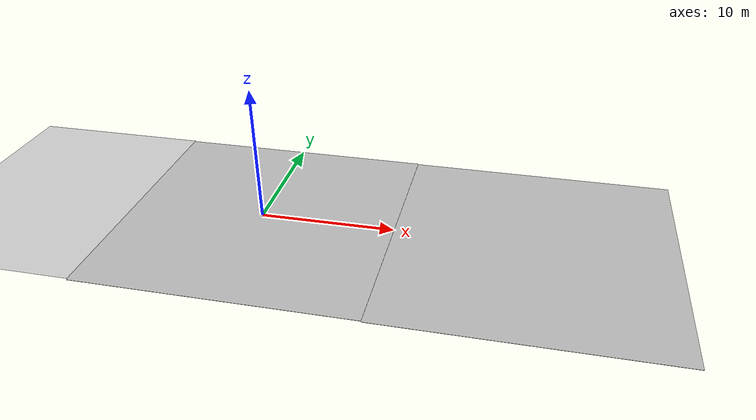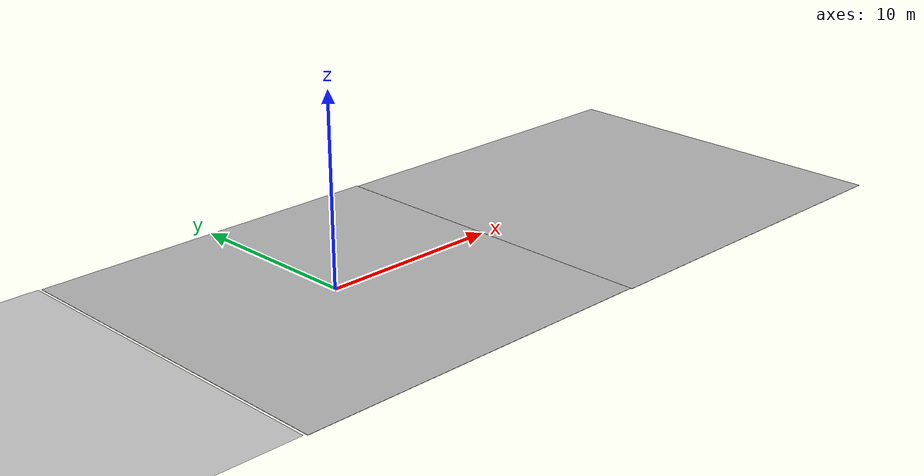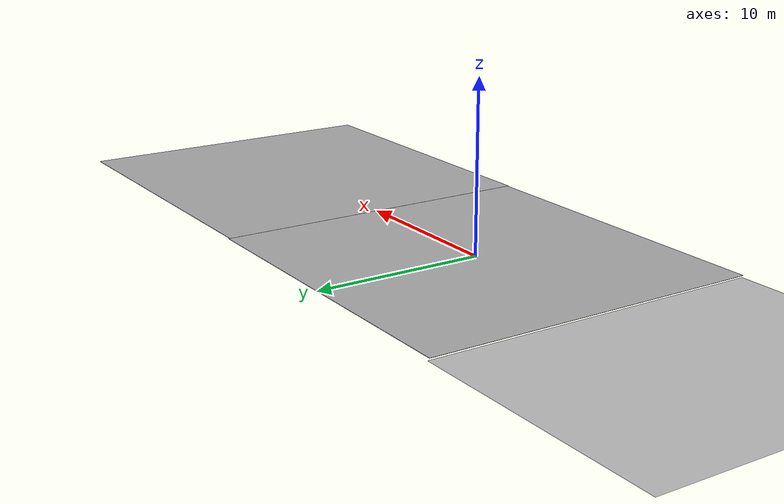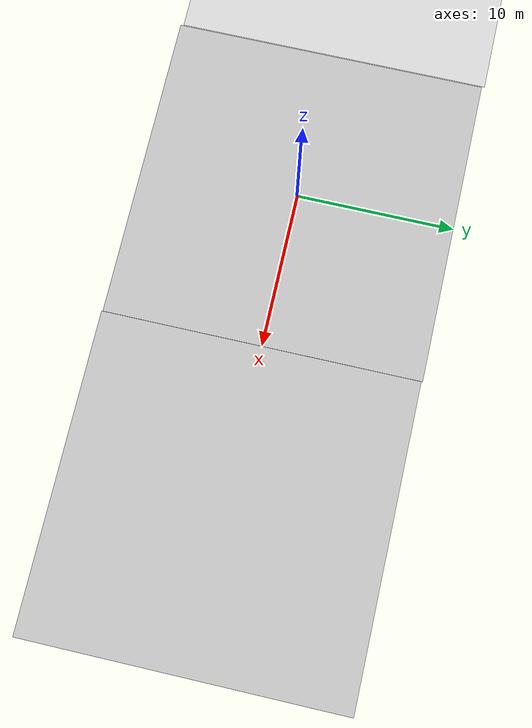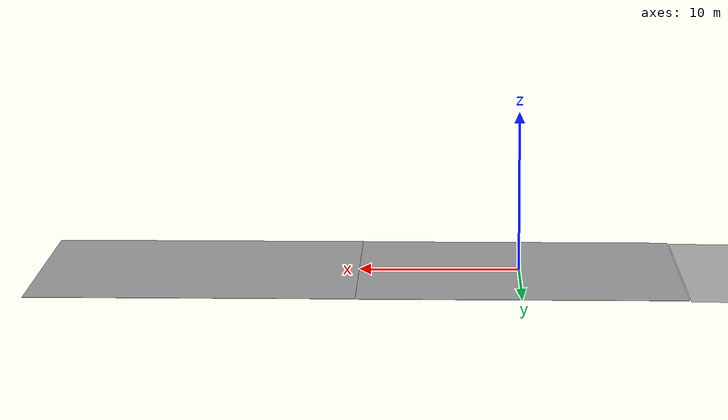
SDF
<?xml version='1.0'?>
<sdf version='1.6'>
  <model name='ground20x60'>
    <model name='my_ground_plane'>
      <static>1</static>
      <link name='link'>
        <collision name='collision'>
          <geometry>
            <plane>
              <normal>0 0 1</normal>
              <size>20 20</size>
            </plane>
          </geometry>
          <surface>
            <friction>
              <ode>
                <mu>100</mu>
                <mu2>50</mu2>
              </ode>
            </friction>
          </surface>
        </collision>
        <visual name='visual'>
          <cast_shadows>0</cast_shadows>
          <geometry>
            <plane>
              <normal>0 0 1</normal>
              <size>20 20</size>
            </plane>
          </geometry>
          <material>
            <script>
              <uri>model://ground20x20/materials/scripts</uri>
              <uri>model://ground20x20/materials/textures</uri>
              <name>WoodGround/Image</name>
            </script>
          </material>
        </visual>
      </link>
      <pose frame=''>-20.0603 0.142959 0 0 -0 0</pose>
    </model>
    <model name='my_ground_plane_0'>
      <static>1</static>
      <link name='link'>
        <collision name='collision'>
          <geometry>
            <plane>
              <normal>0 0 1</normal>
              <size>20 20</size>
            </plane>
          </geometry>
          <surface>
            <friction>
              <ode>
                <mu>100</mu>
                <mu2>50</mu2>
              </ode>
            </friction>
          </surface>
        </collision>
        <visual name='visual'>
          <cast_shadows>0</cast_shadows>
          <geometry>
            <plane>
              <normal>0 0 1</normal>
              <size>20 20</size>
            </plane>
          </geometry>
          <material>
            <script>
              <uri>model://ground20x20/materials/scripts</uri>
              <uri>model://ground20x20/materials/textures</uri>
              <name>WoodGround/Image</name>
            </script>
          </material>
        </visual>
      </link>
      <pose frame=''>0.026452 -0.032681 0 0 -0 0</pose>
    </model>
    <model name='my_ground_plane_1'>
      <static>1</static>
      <link name='link'>
        <collision name='collision'>
          <geometry>
            <plane>
              <normal>0 0 1</normal>
              <size>20 20</size>
            </plane>
          </geometry>
          <surface>
            <friction>
              <ode>
                <mu>100</mu>
                <mu2>50</mu2>
              </ode>
            </friction>
          </surface>
        </collision>
        <visual name='visual'>
          <cast_shadows>0</cast_shadows>
          <geometry>
            <plane>
              <normal>0 0 1</normal>
              <size>20 20</size>
            </plane>
          </geometry>
          <material>
            <script>
              <uri>model://ground20x20/materials/scripts</uri>
              <uri>model://ground20x20/materials/textures</uri>
              <name>WoodGround/Image</name>
            </script>
          </material>
        </visual>
      </link>
      <pose frame=''>20.0339 -0.110278 0 0 -0 0</pose>
    </model>
    <static>0</static>
    <allow_auto_disable>1</allow_auto_disable>
  </model>
</sdf>
